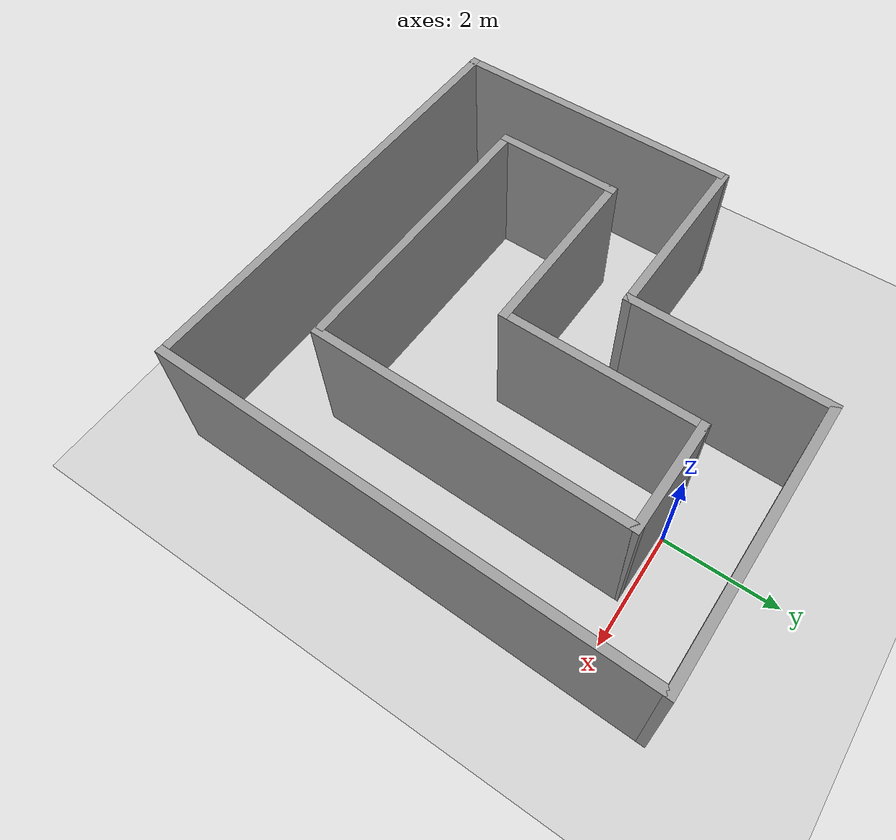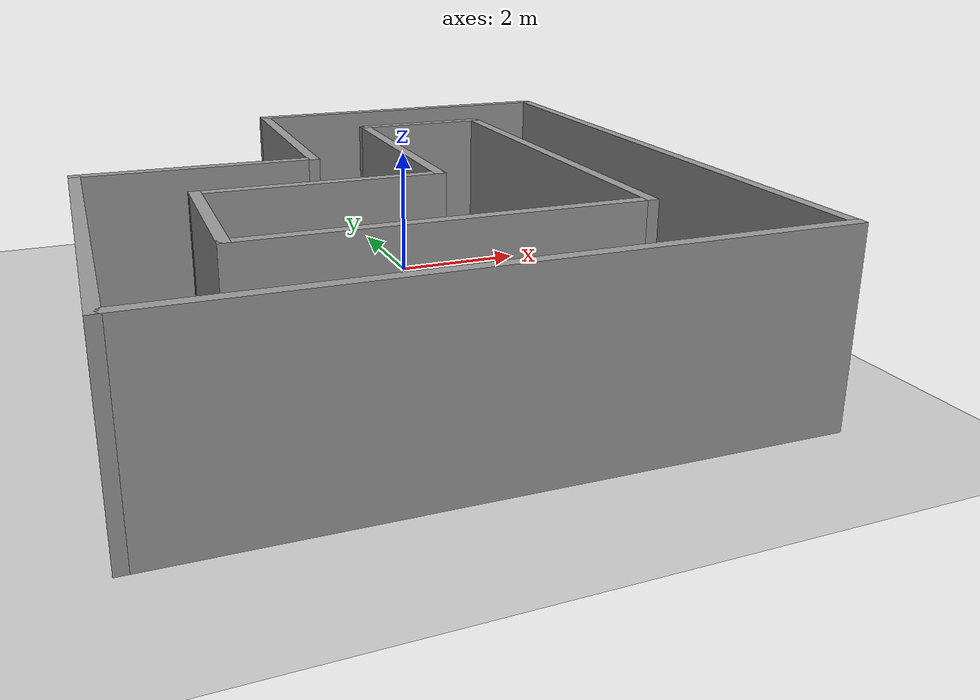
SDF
<sdf version="1.7">
 <world name="default">
  <light name="sun" type="directional">
   <pose>0 0 10 0 -0 0</pose>
   <diffuse>0.8 0.8 0.8 1</diffuse>
   <specular>0.2 0.2 0.2 1</specular>
   <attenuation>
    <range>1000</range>
    <constant>0.9</constant>
    <linear>0.01</linear>
    <quadratic>0.001</quadratic>
   </attenuation>
   <direction>-0.5 0.1 -0.9</direction>
   <spot><inner_angle>0</inner_angle><outer_angle>0</outer_angle><falloff>0</falloff></spot>
  </light>
  <model name="ground_plane">
   <static>1</static>
   <link name="link">
    <collision name="collision">
     <geometry><plane><normal>0 0 1</normal><size>100 100</size></plane></geometry>
     <surface>
      <contact><collide_bitmask>65535</collide_bitmask></contact>
      <friction><ode><mu>100</mu><mu2>50</mu2></ode></friction>
     </surface>
    </collision>
    <visual name="visual">
     <cast_shadows>0</cast_shadows>
     <geometry><plane><normal>0 0 1</normal><size>100 100</size></plane></geometry>
     <material>
      <script><uri>file://media/materials/scripts/gazebo.material</uri><name>Gazebo/Grey</name></script>
     </material>
    </visual>
   </link>
  </model>
  <gravity>0 0 -9.8</gravity>
  <magnetic_field>6e-06 2.3e-05 -4.2e-05</magnetic_field>
  <atmosphere type="adiabatic"/>
  <physics type="ode">
   <max_step_size>0.003</max_step_size>
   <real_time_factor>1</real_time_factor>
   <real_time_update_rate>1000</real_time_update_rate>
  </physics>
  <scene><ambient>0.4 0.4 0.4 1</ambient><background>0.7 0.7 0.7 1</background><shadows>1</shadows></scene>
  <spherical_coordinates>
   <surface_model>EARTH_WGS84</surface_model>
   <latitude_deg>0</latitude_deg>
   <longitude_deg>0</longitude_deg>
   <elevation>0</elevation>
   <heading_deg>0</heading_deg>
  </spherical_coordinates>
  <model name="placed_19_train">
   <pose>-1.23224 -2.97239 0 0 0 -1.59089</pose>
   <link name="Wall_10">
    <collision name="Wall_10_Collision">
     <geometry><box><size>5.25 0.15 2.5</size></box></geometry>
     <pose>0 0 1.25 0 -0 0</pose>
    </collision>
    <visual name="Wall_10_Visual">
     <pose>0 0 1.25 0 -0 0</pose>
     <geometry><box><size>5.25 0.15 2.5</size></box></geometry>
     <material>
      <script><uri>file://media/materials/scripts/gazebo.material</uri><name>Gazebo/Grey</name></script>
      <ambient>1 1 1 1</ambient>
     </material>
     <meta><layer>0</layer></meta>
    </visual>
    <pose>1.675 -3.925 0 0 -0 3.14159</pose>
   </link>
   <link name="Wall_11">
    <collision name="Wall_11_Collision">
     <geometry><box><size>3.25 0.15 2.5</size></box></geometry>
     <pose>0 0 1.25 0 -0 0</pose>
    </collision>
    <visual name="Wall_11_Visual">
     <pose>0 0 1.25 0 -0 0</pose>
     <geometry><box><size>3.25 0.15 2.5</size></box></geometry>
     <material>
      <script><uri>file://media/materials/scripts/gazebo.material</uri><name>Gazebo/Grey</name></script>
      <ambient>1 1 1 1</ambient>
     </material>
     <meta><layer>0</layer></meta>
    </visual>
    <pose>-0.875 -2.375 0 0 -0 1.5708</pose>
   </link>
   <link name="Wall_12">
    <collision name="Wall_12_Collision">
     <geometry><box><size>3.5 0.15 2.5</size></box></geometry>
     <pose>0 0 1.25 0 -0 0</pose>
    </collision>
    <visual name="Wall_12_Visual">
     <pose>0 0 1.25 0 -0 0</pose>
     <geometry><box><size>3.5 0.15 2.5</size></box></geometry>
     <material>
      <script><uri>file://media/materials/scripts/gazebo.material</uri><name>Gazebo/Grey</name></script>
      <ambient>1 1 1 1</ambient>
     </material>
     <meta><layer>0</layer></meta>
    </visual>
    <pose>-2.55 -0.825 0 0 -0 3.14159</pose>
   </link>
   <link name="Wall_13">
    <collision name="Wall_13_Collision">
     <geometry><box><size>4.9 0.15 2.5</size></box></geometry>
     <pose>0 0 1.25 0 -0 0</pose>
    </collision>
    <visual name="Wall_13_Visual">
     <pose>0 0 1.25 0 -0 0</pose>
     <geometry><box><size>4.9 0.15 2.5</size></box></geometry>
     <material>
      <script><uri>file://media/materials/scripts/gazebo.material</uri><name>Gazebo/Grey</name></script>
      <ambient>1 1 1 1</ambient>
     </material>
     <meta><layer>0</layer></meta>
    </visual>
    <pose>-4.225 1.55 0 0 -0 1.5708</pose>
   </link>
   <link name="Wall_15">
    <collision name="Wall_15_Collision">
     <geometry><box><size>2 0.15 2.5</size></box></geometry>
     <pose>0 0 1.25 0 -0 0</pose>
    </collision>
    <visual name="Wall_15_Visual">
     <pose>0 0 1.25 0 -0 0</pose>
     <geometry><box><size>2 0.15 2.5</size></box></geometry>
     <material>
      <script><uri>file://media/materials/scripts/gazebo.material</uri><name>Gazebo/Grey</name></script>
      <ambient>1 1 1 1</ambient>
     </material>
     <meta><layer>0</layer></meta>
    </visual>
    <pose>-2.84822 1.42589 0 0 -0 -1.5708</pose>
   </link>
   <link name="Wall_16">
    <collision name="Wall_16_Collision">
     <geometry><box><size>3.5 0.15 2.5</size></box></geometry>
     <pose>0 0 1.25 0 -0 0</pose>
    </collision>
    <visual name="Wall_16_Visual">
     <pose>0 0 1.25 0 -0 0</pose>
     <geometry><box><size>3.5 0.15 2.5</size></box></geometry>
     <material>
      <script><uri>file://media/materials/scripts/gazebo.material</uri><name>Gazebo/Grey</name></script>
      <ambient>1 1 1 1</ambient>
     </material>
     <meta><layer>0</layer></meta>
    </visual>
    <pose>-1.17323 0.500894 0 0 -0 0</pose>
   </link>
   <link name="Wall_17">
    <collision name="Wall_17_Collision">
     <geometry><box><size>3.25 0.15 2.5</size></box></geometry>
     <pose>0 0 1.25 0 -0 0</pose>
    </collision>
    <visual name="Wall_17_Visual">
     <pose>0 0 1.25 0 -0 0</pose>
     <geometry><box><size>3.25 0.15 2.5</size></box></geometry>
     <material>
      <script><uri>file://media/materials/scripts/gazebo.material</uri><name>Gazebo/Grey</name></script>
      <ambient>1 1 1 1</ambient>
     </material>
     <meta><layer>0</layer></meta>
    </visual>
    <pose>0.501774 -1.04911 0 0 -0 -1.5708</pose>
   </link>
   <link name="Wall_18">
    <collision name="Wall_18_Collision">
     <geometry><box><size>2.25 0.15 2.5</size></box></geometry>
     <pose>0 0 1.25 0 -0 0</pose>
    </collision>
    <visual name="Wall_18_Visual">
     <pose>0 0 1.25 0 -0 0</pose>
     <geometry><box><size>2.25 0.15 2.5</size></box></geometry>
     <material>
      <script><uri>file://media/materials/scripts/gazebo.material</uri><name>Gazebo/Grey</name></script>
      <ambient>1 1 1 1</ambient>
     </material>
     <meta><layer>0</layer></meta>
    </visual>
    <pose>1.55177 -2.59911 0 0 -0 0</pose>
   </link>
   <link name="Wall_19">
    <collision name="Wall_19_Collision">
     <geometry><box><size>5 0.15 2.5</size></box></geometry>
     <pose>0 0 1.25 0 -0 0</pose>
    </collision>
    <visual name="Wall_19_Visual">
     <pose>0 0 1.25 0 -0 0</pose>
     <geometry><box><size>5 0.15 2.5</size></box></geometry>
     <material>
      <script><uri>file://media/materials/scripts/gazebo.material</uri><name>Gazebo/Grey</name></script>
      <ambient>1 1 1 1</ambient>
     </material>
     <meta><layer>0</layer></meta>
    </visual>
    <pose>2.60177 -0.174106 0 0 -0 1.5708</pose>
   </link>
   <link name="Wall_22">
    <collision name="Wall_22_Collision">
     <geometry><box><size>5.6 0.15 2.5</size></box></geometry>
     <pose>0 0 1.25 0 -0 0</pose>
    </collision>
    <visual name="Wall_22_Visual">
     <pose>0 0 1.25 0 -0 0</pose>
     <geometry><box><size>5.6 0.15 2.5</size></box></geometry>
     <material>
      <script><uri>file://media/materials/scripts/gazebo.material</uri><name>Gazebo/Grey</name></script>
      <ambient>1 1 1 1</ambient>
     </material>
     <meta><layer>0</layer></meta>
    </visual>
    <pose>-0.123226 2.35089 0 0 -0 0</pose>
   </link>
   <link name="Wall_8">
    <collision name="Wall_8_Collision">
     <geometry><box><size>8.5 0.15 2.5</size></box></geometry>
     <pose>0 0 1.25 0 -0 0</pose>
    </collision>
    <visual name="Wall_8_Visual">
     <pose>0 0 1.25 0 -0 0</pose>
     <geometry><box><size>8.5 0.15 2.5</size></box></geometry>
     <material>
      <script><uri>file://media/materials/scripts/gazebo.material</uri><name>Gazebo/Grey</name></script>
      <ambient>1 1 1 1</ambient>
     </material>
     <meta><layer>0</layer></meta>
    </visual>
    <pose>0.05 3.925 0 0 -0 0</pose>
   </link>
   <link name="Wall_9">
    <collision name="Wall_9_Collision">
     <geometry><box><size>8 0.15 2.5</size></box></geometry>
     <pose>0 0 1.25 0 -0 0</pose>
    </collision>
    <visual name="Wall_9_Visual">
     <pose>0 0 1.25 0 -0 0</pose>
     <geometry><box><size>8 0.15 2.5</size></box></geometry>
     <material>
      <script><uri>file://media/materials/scripts/gazebo.material</uri><name>Gazebo/Grey</name></script>
      <ambient>1 1 1 1</ambient>
     </material>
     <meta><layer>0</layer></meta>
    </visual>
    <pose>4.225 0 0 0 -0 -1.5708</pose>
   </link>
   <static>1</static>
  </model>
 </world>
</sdf>
